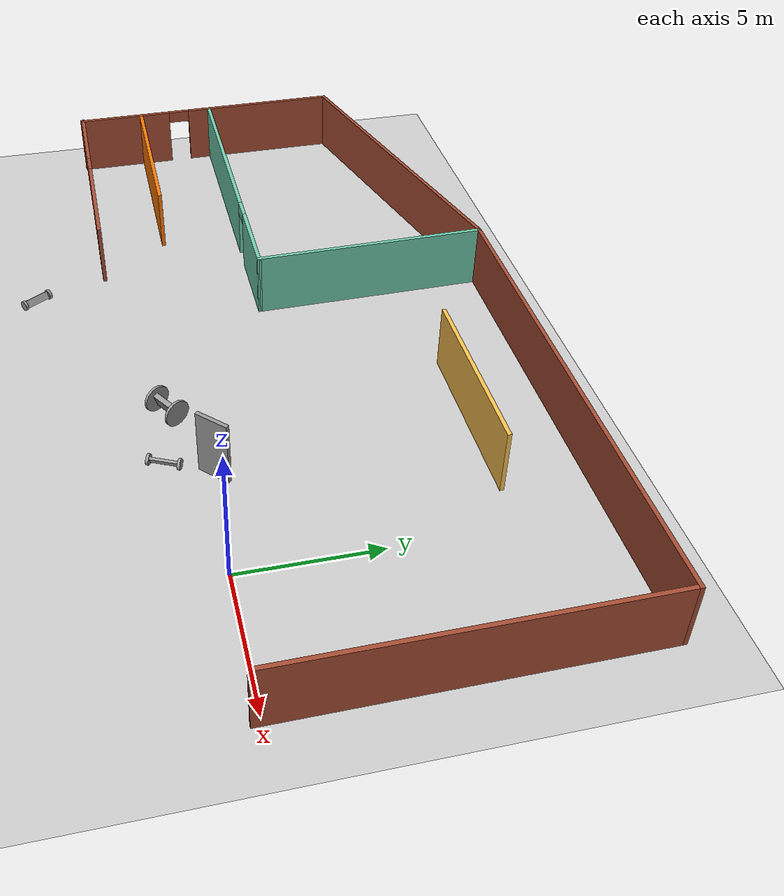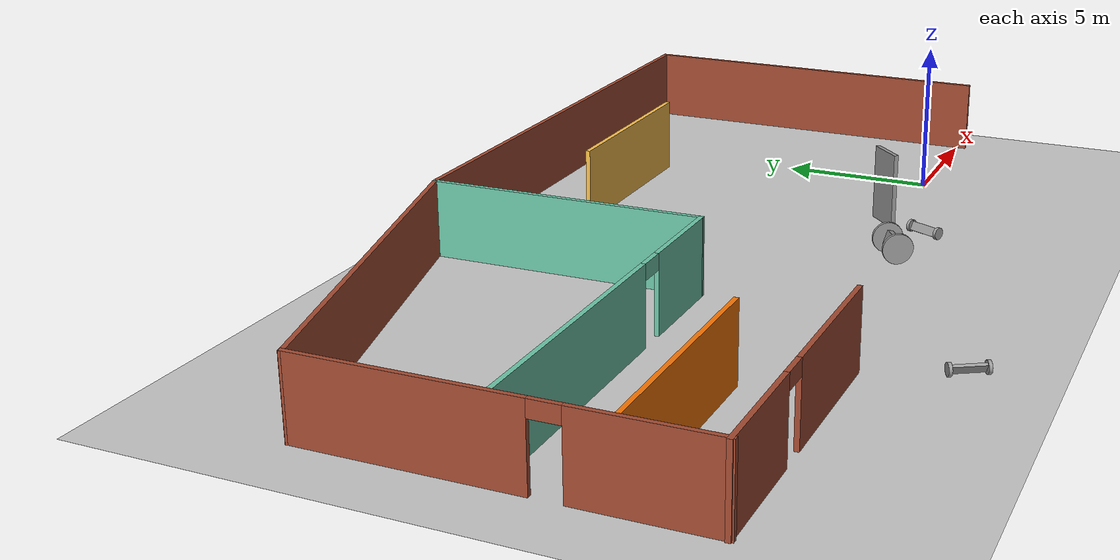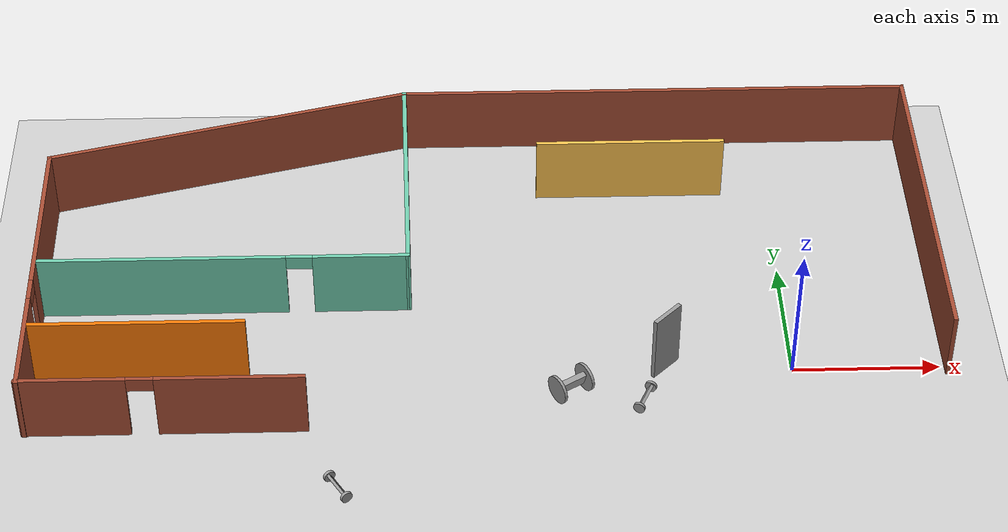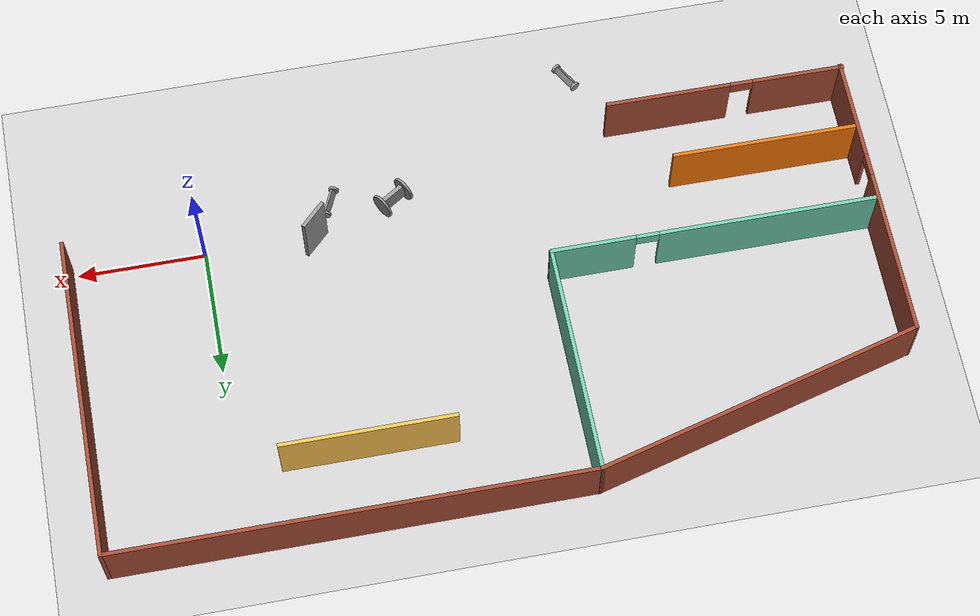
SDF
<sdf version="1.6">
 <world name="default">
  <model name="ground_plane">
   <static>1</static>
   <link name="link">
    <collision name="collision">
     <geometry><plane><normal>0 0 1</normal><size>100 100</size></plane></geometry>
     <surface>
      <contact><collide_bitmask>65535</collide_bitmask></contact>
      <friction><ode><mu>100</mu><mu2>50</mu2></ode></friction>
     </surface>
    </collision>
    <visual name="visual">
     <cast_shadows>0</cast_shadows>
     <geometry><plane><normal>0 0 1</normal><size>100 100</size></plane></geometry>
     <material>
      <script><uri>file://media/materials/scripts/gazebo.material</uri><name>Gazebo/Grey</name></script>
     </material>
    </visual>
   </link>
  </model>
  <model name="twowheelsrobotModel">
   <link name="link_0">
    <pose>0 0 0.2 0 -0 0</pose>
    <inertial>
     <mass>1</mass>
     <inertia>
      <ixx>0.166667</ixx>
      <ixy>0</ixy>
      <ixz>0</ixz>
      <iyy>0.166667</iyy>
      <iyz>0</iyz>
      <izz>0.166667</izz>
     </inertia>
    </inertial>
    <visual name="visual">
     <geometry><box><size>0.3 1 0.1</size></box></geometry>
     <material>
      <lighting>1</lighting>
      <script><uri>file://media/materials/scripts/gazebo.material</uri><name>Gazebo/Grey</name></script>
      <shader type="pixel"><normal_map>__default__</normal_map></shader>
      <ambient>0.3 0.3 0.3 1</ambient>
      <diffuse>0.7 0.7 0.7 1</diffuse>
      <specular>0.01 0.01 0.01 1</specular>
      <emissive>0 0 0 1</emissive>
     </material>
    </visual>
    <collision name="collision">
     <geometry><box><size>0.3 1 0.1</size></box></geometry>
     <surface>
      <friction>
       <ode><mu>1</mu><mu2>1</mu2><fdir1>0 0 0</fdir1><slip1>0</slip1><slip2>0</slip2></ode>
       <torsional>
        <coefficient>1</coefficient>
        <patch_radius>0</patch_radius>
        <surface_radius>0</surface_radius>
        <use_patch_radius>1</use_patch_radius>
        <ode><slip>0</slip></ode>
       </torsional>
      </friction>
      <bounce><restitution_coefficient>0</restitution_coefficient><threshold>1e+06</threshold></bounce>
      <contact>
       <collide_without_contact>0</collide_without_contact>
       <collide_without_contact_bitmask>1</collide_without_contact_bitmask>
       <collide_bitmask>1</collide_bitmask>
       <ode>
        <soft_cfm>0</soft_cfm>
        <soft_erp>0.2</soft_erp>
        <kp>1e+13</kp>
        <kd>1</kd>
        <max_vel>0.01</max_vel>
        <min_depth>0</min_depth>
       </ode>
       <bullet>
        <split_impulse>1</split_impulse>
        <split_impulse_penetration_threshold>-0.01</split_impulse_penetration_threshold>
        <soft_cfm>0</soft_cfm>
        <soft_erp>0.2</soft_erp>
        <kp>1e+13</kp>
        <kd>1</kd>
       </bullet>
      </contact>
     </surface>
    </collision>
   </link>
   <link name="link_1">
    <pose>0 -0.550019 0.2 1.5707 -0 0</pose>
    <inertial>
     <mass>1</mass>
     <inertia><ixx>0.145833</ixx><ixy>0</ixy><ixz>0</ixz><iyy>0.145833</iyy><iyz>0</iyz><izz>0.125</izz></inertia>
    </inertial>
    <visual name="visual">
     <geometry><cylinder><radius>0.2</radius><length>0.1</length></cylinder></geometry>
     <material>
      <lighting>1</lighting>
      <script><uri>file://media/materials/scripts/gazebo.material</uri><name>Gazebo/Grey</name></script>
      <shader type="pixel"><normal_map>__default__</normal_map></shader>
      <ambient>0.3 0.3 0.3 1</ambient>
      <diffuse>0.7 0.7 0.7 1</diffuse>
      <specular>0.01 0.01 0.01 1</specular>
      <emissive>0 0 0 1</emissive>
     </material>
    </visual>
    <collision name="collision">
     <geometry><cylinder><radius>0.2</radius><length>0.1</length></cylinder></geometry>
     <surface>
      <friction>
       <ode><mu>1</mu><mu2>1</mu2><fdir1>0 0 0</fdir1><slip1>0</slip1><slip2>0</slip2></ode>
       <torsional>
        <coefficient>1</coefficient>
        <patch_radius>0</patch_radius>
        <surface_radius>0</surface_radius>
        <use_patch_radius>1</use_patch_radius>
        <ode><slip>0</slip></ode>
       </torsional>
      </friction>
      <bounce><restitution_coefficient>0</restitution_coefficient><threshold>1e+06</threshold></bounce>
      <contact>
       <collide_without_contact>0</collide_without_contact>
       <collide_without_contact_bitmask>1</collide_without_contact_bitmask>
       <collide_bitmask>1</collide_bitmask>
       <ode>
        <soft_cfm>0</soft_cfm>
        <soft_erp>0.2</soft_erp>
        <kp>1e+13</kp>
        <kd>1</kd>
        <max_vel>0.01</max_vel>
        <min_depth>0</min_depth>
       </ode>
       <bullet>
        <split_impulse>1</split_impulse>
        <split_impulse_penetration_threshold>-0.01</split_impulse_penetration_threshold>
        <soft_cfm>0</soft_cfm>
        <soft_erp>0.2</soft_erp>
        <kp>1e+13</kp>
        <kd>1</kd>
       </bullet>
      </contact>
     </surface>
    </collision>
   </link>
   <link name="link_1_clone">
    <pose>0 0.550019 0.2 1.5707 -0 0</pose>
    <inertial>
     <mass>1</mass>
     <inertia><ixx>0.145833</ixx><ixy>0</ixy><ixz>0</ixz><iyy>0.145833</iyy><iyz>0</iyz><izz>0.125</izz></inertia>
    </inertial>
    <visual name="visual">
     <geometry><cylinder><radius>0.2</radius><length>0.1</length></cylinder></geometry>
     <material>
      <lighting>1</lighting>
      <script><uri>file://media/materials/scripts/gazebo.material</uri><name>Gazebo/Grey</name></script>
      <shader type="pixel"><normal_map>__default__</normal_map></shader>
      <ambient>0.3 0.3 0.3 1</ambient>
      <diffuse>0.7 0.7 0.7 1</diffuse>
      <specular>0.01 0.01 0.01 1</specular>
      <emissive>0 0 0 1</emissive>
     </material>
    </visual>
    <collision name="collision">
     <geometry><cylinder><radius>0.2</radius><length>0.1</length></cylinder></geometry>
     <surface>
      <friction>
       <ode><mu>1</mu><mu2>1</mu2><fdir1>0 0 0</fdir1><slip1>0</slip1><slip2>0</slip2></ode>
       <torsional>
        <coefficient>1</coefficient>
        <patch_radius>0</patch_radius>
        <surface_radius>0</surface_radius>
        <use_patch_radius>1</use_patch_radius>
        <ode><slip>0</slip></ode>
       </torsional>
      </friction>
      <bounce><restitution_coefficient>0</restitution_coefficient><threshold>1e+06</threshold></bounce>
      <contact>
       <collide_without_contact>0</collide_without_contact>
       <collide_without_contact_bitmask>1</collide_without_contact_bitmask>
       <collide_bitmask>1</collide_bitmask>
       <ode>
        <soft_cfm>0</soft_cfm>
        <soft_erp>0.2</soft_erp>
        <kp>1e+13</kp>
        <kd>1</kd>
        <max_vel>0.01</max_vel>
        <min_depth>0</min_depth>
       </ode>
       <bullet>
        <split_impulse>1</split_impulse>
        <split_impulse_penetration_threshold>-0.01</split_impulse_penetration_threshold>
        <soft_cfm>0</soft_cfm>
        <soft_erp>0.2</soft_erp>
        <kp>1e+13</kp>
        <kd>1</kd>
       </bullet>
      </contact>
     </surface>
    </collision>
   </link>
   <joint name="link_0_JOINT_0" type="revolute">
    <parent>link_0</parent>
    <child>link_1</child>
    <axis>
     <xyz>0 0 1</xyz>
     <limit>
      <lower>-1.79769e+308</lower>
      <upper>1.79769e+308</upper>
      <effort>-1</effort>
      <velocity>-1</velocity>
     </limit>
     <dynamics>
      <spring_reference>0</spring_reference>
      <spring_stiffness>0</spring_stiffness>
      <damping>0</damping>
     </dynamics>
     <use_parent_model_frame>0</use_parent_model_frame>
    </axis>
    <physics>
     <ode><limit><cfm>0</cfm><erp>0.2</erp></limit><suspension><cfm>0</cfm><erp>0.2</erp></suspension></ode>
    </physics>
   </joint>
   <joint name="link_0_JOINT_1" type="revolute">
    <parent>link_0</parent>
    <child>link_1_clone</child>
    <axis>
     <xyz>0 0 1</xyz>
     <limit>
      <lower>-1.79769e+308</lower>
      <upper>1.79769e+308</upper>
      <effort>-1</effort>
      <velocity>-1</velocity>
     </limit>
     <dynamics>
      <spring_reference>0</spring_reference>
      <spring_stiffness>0</spring_stiffness>
      <damping>0</damping>
     </dynamics>
     <use_parent_model_frame>0</use_parent_model_frame>
    </axis>
    <physics>
     <ode><limit><cfm>0</cfm><erp>0.2</erp></limit><suspension><cfm>0</cfm><erp>0.2</erp></suspension></ode>
    </physics>
   </joint>
   <static>0</static>
   <pose>-15.4437 -5.30653 0.097717 1e-06 1.03395 0.546185</pose>
  </model>
  <model name="twowheelsrobotModel_clone">
   <link name="link_0">
    <pose>0 0 0.2 0 -0 0</pose>
    <inertial>
     <mass>1</mass>
     <inertia>
      <ixx>0.166667</ixx>
      <ixy>0</ixy>
      <ixz>0</ixz>
      <iyy>0.166667</iyy>
      <iyz>0</iyz>
      <izz>0.166667</izz>
     </inertia>
    </inertial>
    <visual name="visual">
     <geometry><box><size>0.3 1 0.1</size></box></geometry>
     <material>
      <lighting>1</lighting>
      <script><uri>file://media/materials/scripts/gazebo.material</uri><name>Gazebo/Grey</name></script>
      <shader type="pixel"><normal_map>__default__</normal_map></shader>
      <ambient>0.3 0.3 0.3 1</ambient>
      <diffuse>0.7 0.7 0.7 1</diffuse>
      <specular>0.01 0.01 0.01 1</specular>
      <emissive>0 0 0 1</emissive>
     </material>
    </visual>
    <collision name="collision">
     <geometry><box><size>0.3 1 0.1</size></box></geometry>
     <surface>
      <friction>
       <ode><mu>1</mu><mu2>1</mu2><fdir1>0 0 0</fdir1><slip1>0</slip1><slip2>0</slip2></ode>
       <torsional>
        <coefficient>1</coefficient>
        <patch_radius>0</patch_radius>
        <surface_radius>0</surface_radius>
        <use_patch_radius>1</use_patch_radius>
        <ode><slip>0</slip></ode>
       </torsional>
      </friction>
      <bounce><restitution_coefficient>0</restitution_coefficient><threshold>1e+06</threshold></bounce>
      <contact>
       <collide_without_contact>0</collide_without_contact>
       <collide_without_contact_bitmask>1</collide_without_contact_bitmask>
       <collide_bitmask>1</collide_bitmask>
       <ode>
        <soft_cfm>0</soft_cfm>
        <soft_erp>0.2</soft_erp>
        <kp>1e+13</kp>
        <kd>1</kd>
        <max_vel>0.01</max_vel>
        <min_depth>0</min_depth>
       </ode>
       <bullet>
        <split_impulse>1</split_impulse>
        <split_impulse_penetration_threshold>-0.01</split_impulse_penetration_threshold>
        <soft_cfm>0</soft_cfm>
        <soft_erp>0.2</soft_erp>
        <kp>1e+13</kp>
        <kd>1</kd>
       </bullet>
      </contact>
     </surface>
    </collision>
   </link>
   <link name="link_1">
    <pose>0 -0.550019 0.2 1.5707 -0 0</pose>
    <inertial>
     <mass>1</mass>
     <inertia><ixx>0.145833</ixx><ixy>0</ixy><ixz>0</ixz><iyy>0.145833</iyy><iyz>0</iyz><izz>0.125</izz></inertia>
    </inertial>
    <visual name="visual">
     <geometry><cylinder><radius>0.2</radius><length>0.1</length></cylinder></geometry>
     <material>
      <lighting>1</lighting>
      <script><uri>file://media/materials/scripts/gazebo.material</uri><name>Gazebo/Grey</name></script>
      <shader type="pixel"><normal_map>__default__</normal_map></shader>
      <ambient>0.3 0.3 0.3 1</ambient>
      <diffuse>0.7 0.7 0.7 1</diffuse>
      <specular>0.01 0.01 0.01 1</specular>
      <emissive>0 0 0 1</emissive>
     </material>
    </visual>
    <collision name="collision">
     <geometry><cylinder><radius>0.2</radius><length>0.1</length></cylinder></geometry>
     <surface>
      <friction>
       <ode><mu>1</mu><mu2>1</mu2><fdir1>0 0 0</fdir1><slip1>0</slip1><slip2>0</slip2></ode>
       <torsional>
        <coefficient>1</coefficient>
        <patch_radius>0</patch_radius>
        <surface_radius>0</surface_radius>
        <use_patch_radius>1</use_patch_radius>
        <ode><slip>0</slip></ode>
       </torsional>
      </friction>
      <bounce><restitution_coefficient>0</restitution_coefficient><threshold>1e+06</threshold></bounce>
      <contact>
       <collide_without_contact>0</collide_without_contact>
       <collide_without_contact_bitmask>1</collide_without_contact_bitmask>
       <collide_bitmask>1</collide_bitmask>
       <ode>
        <soft_cfm>0</soft_cfm>
        <soft_erp>0.2</soft_erp>
        <kp>1e+13</kp>
        <kd>1</kd>
        <max_vel>0.01</max_vel>
        <min_depth>0</min_depth>
       </ode>
       <bullet>
        <split_impulse>1</split_impulse>
        <split_impulse_penetration_threshold>-0.01</split_impulse_penetration_threshold>
        <soft_cfm>0</soft_cfm>
        <soft_erp>0.2</soft_erp>
        <kp>1e+13</kp>
        <kd>1</kd>
       </bullet>
      </contact>
     </surface>
    </collision>
   </link>
   <link name="link_1_clone">
    <pose>0 0.550019 0.2 1.5707 -0 0</pose>
    <inertial>
     <mass>1</mass>
     <inertia><ixx>0.145833</ixx><ixy>0</ixy><ixz>0</ixz><iyy>0.145833</iyy><iyz>0</iyz><izz>0.125</izz></inertia>
    </inertial>
    <visual name="visual">
     <geometry><cylinder><radius>0.2</radius><length>0.1</length></cylinder></geometry>
     <material>
      <lighting>1</lighting>
      <script><uri>file://media/materials/scripts/gazebo.material</uri><name>Gazebo/Grey</name></script>
      <shader type="pixel"><normal_map>__default__</normal_map></shader>
      <ambient>0.3 0.3 0.3 1</ambient>
      <diffuse>0.7 0.7 0.7 1</diffuse>
      <specular>0.01 0.01 0.01 1</specular>
      <emissive>0 0 0 1</emissive>
     </material>
    </visual>
    <collision name="collision">
     <geometry><cylinder><radius>0.2</radius><length>0.1</length></cylinder></geometry>
     <surface>
      <friction>
       <ode><mu>1</mu><mu2>1</mu2><fdir1>0 0 0</fdir1><slip1>0</slip1><slip2>0</slip2></ode>
       <torsional>
        <coefficient>1</coefficient>
        <patch_radius>0</patch_radius>
        <surface_radius>0</surface_radius>
        <use_patch_radius>1</use_patch_radius>
        <ode><slip>0</slip></ode>
       </torsional>
      </friction>
      <bounce><restitution_coefficient>0</restitution_coefficient><threshold>1e+06</threshold></bounce>
      <contact>
       <collide_without_contact>0</collide_without_contact>
       <collide_without_contact_bitmask>1</collide_without_contact_bitmask>
       <collide_bitmask>1</collide_bitmask>
       <ode>
        <soft_cfm>0</soft_cfm>
        <soft_erp>0.2</soft_erp>
        <kp>1e+13</kp>
        <kd>1</kd>
        <max_vel>0.01</max_vel>
        <min_depth>0</min_depth>
       </ode>
       <bullet>
        <split_impulse>1</split_impulse>
        <split_impulse_penetration_threshold>-0.01</split_impulse_penetration_threshold>
        <soft_cfm>0</soft_cfm>
        <soft_erp>0.2</soft_erp>
        <kp>1e+13</kp>
        <kd>1</kd>
       </bullet>
      </contact>
     </surface>
    </collision>
   </link>
   <joint name="link_0_JOINT_0" type="revolute">
    <parent>link_0</parent>
    <child>link_1</child>
    <axis>
     <xyz>0 0 1</xyz>
     <limit>
      <lower>-1.79769e+308</lower>
      <upper>1.79769e+308</upper>
      <effort>-1</effort>
      <velocity>-1</velocity>
     </limit>
     <dynamics>
      <spring_reference>0</spring_reference>
      <spring_stiffness>0</spring_stiffness>
      <damping>0</damping>
     </dynamics>
     <use_parent_model_frame>0</use_parent_model_frame>
    </axis>
    <physics>
     <ode><limit><cfm>0</cfm><erp>0.2</erp></limit><suspension><cfm>0</cfm><erp>0.2</erp></suspension></ode>
    </physics>
   </joint>
   <joint name="link_0_JOINT_1" type="revolute">
    <parent>link_0</parent>
    <child>link_1_clone</child>
    <axis>
     <xyz>0 0 1</xyz>
     <limit>
      <lower>-1.79769e+308</lower>
      <upper>1.79769e+308</upper>
      <effort>-1</effort>
      <velocity>-1</velocity>
     </limit>
     <dynamics>
      <spring_reference>0</spring_reference>
      <spring_stiffness>0</spring_stiffness>
      <damping>0</damping>
     </dynamics>
     <use_parent_model_frame>0</use_parent_model_frame>
    </axis>
    <physics>
     <ode><limit><cfm>0</cfm><erp>0.2</erp></limit><suspension><cfm>0</cfm><erp>0.2</erp></suspension></ode>
    </physics>
   </joint>
   <static>0</static>
   <pose>-5.26683 -1.2959 0.290898 3.14159 1.09901 2.71486</pose>
  </model>
  <model name="BigRobot">
   <link name="link">
    <inertial>
     <mass>1</mass>
     <inertia>
      <ixx>0.166667</ixx>
      <ixy>0</ixy>
      <ixz>0</ixz>
      <iyy>0.166667</iyy>
      <iyz>0</iyz>
      <izz>0.166667</izz>
     </inertia>
    </inertial>
    <pose>0 0 0.5 0 -0 0</pose>
    <visual name="visual">
     <geometry><box><size>0.5 1 0.2</size></box></geometry>
     <material>
      <script><name>Gazebo/Grey</name><uri>file://media/materials/scripts/gazebo.material</uri></script>
      <shader type="pixel"><normal_map>__default__</normal_map></shader>
      <ambient>0.3 0.3 0.3 1</ambient>
      <diffuse>0.7 0.7 0.7 1</diffuse>
      <specular>0.01 0.01 0.01 1</specular>
      <emissive>0 0 0 1</emissive>
     </material>
    </visual>
    <collision name="collision">
     <geometry><box><size>0.5 1 0.2</size></box></geometry>
     <surface>
      <friction>
       <ode><mu>1</mu><mu2>1</mu2><fdir1>0 0 0</fdir1><slip1>0</slip1><slip2>0</slip2></ode>
       <torsional>
        <coefficient>1</coefficient>
        <patch_radius>0</patch_radius>
        <surface_radius>0</surface_radius>
        <use_patch_radius>1</use_patch_radius>
        <ode><slip>0</slip></ode>
       </torsional>
      </friction>
      <bounce><restitution_coefficient>0</restitution_coefficient><threshold>1e+06</threshold></bounce>
      <contact>
       <collide_without_contact>0</collide_without_contact>
       <collide_without_contact_bitmask>1</collide_without_contact_bitmask>
       <collide_bitmask>1</collide_bitmask>
       <ode>
        <soft_cfm>0</soft_cfm>
        <soft_erp>0.2</soft_erp>
        <kp>1e+13</kp>
        <kd>1</kd>
        <max_vel>0.01</max_vel>
        <min_depth>0</min_depth>
       </ode>
       <bullet>
        <split_impulse>1</split_impulse>
        <split_impulse_penetration_threshold>-0.01</split_impulse_penetration_threshold>
        <soft_cfm>0</soft_cfm>
        <soft_erp>0.2</soft_erp>
        <kp>1e+13</kp>
        <kd>1</kd>
       </bullet>
      </contact>
     </surface>
    </collision>
   </link>
   <link name="link_0">
    <inertial>
     <mass>1</mass>
     <inertia><ixx>0.145833</ixx><ixy>0</ixy><ixz>0</ixz><iyy>0.145833</iyy><iyz>0</iyz><izz>0.125</izz></inertia>
    </inertial>
    <pose>0 -0.550048 0.5 1.5707 -0 0</pose>
    <visual name="visual">
     <geometry><cylinder><radius>0.5</radius><length>0.1</length></cylinder></geometry>
     <material>
      <lighting>1</lighting>
      <script><uri>file://media/materials/scripts/gazebo.material</uri><name>Gazebo/Grey</name></script>
      <shader type="pixel"><normal_map>__default__</normal_map></shader>
      <ambient>0.3 0.3 0.3 1</ambient>
      <diffuse>0.7 0.7 0.7 1</diffuse>
      <specular>0.01 0.01 0.01 1</specular>
      <emissive>0 0 0 1</emissive>
     </material>
    </visual>
    <collision name="collision">
     <geometry><cylinder><radius>0.5</radius><length>0.1</length></cylinder></geometry>
     <surface>
      <friction>
       <ode><mu>1</mu><mu2>1</mu2><fdir1>0 0 0</fdir1><slip1>0</slip1><slip2>0</slip2></ode>
       <torsional>
        <coefficient>1</coefficient>
        <patch_radius>0</patch_radius>
        <surface_radius>0</surface_radius>
        <use_patch_radius>1</use_patch_radius>
        <ode><slip>0</slip></ode>
       </torsional>
      </friction>
      <bounce><restitution_coefficient>0</restitution_coefficient><threshold>1e+06</threshold></bounce>
      <contact>
       <collide_without_contact>0</collide_without_contact>
       <collide_without_contact_bitmask>1</collide_without_contact_bitmask>
       <collide_bitmask>1</collide_bitmask>
       <ode>
        <soft_cfm>0</soft_cfm>
        <soft_erp>0.2</soft_erp>
        <kp>1e+13</kp>
        <kd>1</kd>
        <max_vel>0.01</max_vel>
        <min_depth>0</min_depth>
       </ode>
       <bullet>
        <split_impulse>1</split_impulse>
        <split_impulse_penetration_threshold>-0.01</split_impulse_penetration_threshold>
        <soft_cfm>0</soft_cfm>
        <soft_erp>0.2</soft_erp>
        <kp>1e+13</kp>
        <kd>1</kd>
       </bullet>
      </contact>
     </surface>
    </collision>
   </link>
   <link name="link_0_clone">
    <inertial>
     <mass>1</mass>
     <inertia><ixx>0.145833</ixx><ixy>0</ixy><ixz>0</ixz><iyy>0.145833</iyy><iyz>0</iyz><izz>0.125</izz></inertia>
    </inertial>
    <pose>0 0.550048 0.5 1.5707 -0 0</pose>
    <visual name="visual">
     <geometry><cylinder><radius>0.5</radius><length>0.1</length></cylinder></geometry>
     <material>
      <lighting>1</lighting>
      <script><uri>file://media/materials/scripts/gazebo.material</uri><name>Gazebo/Grey</name></script>
      <shader type="pixel"><normal_map>__default__</normal_map></shader>
      <ambient>0.3 0.3 0.3 1</ambient>
      <diffuse>0.7 0.7 0.7 1</diffuse>
      <specular>0.01 0.01 0.01 1</specular>
      <emissive>0 0 0 1</emissive>
     </material>
    </visual>
    <collision name="collision">
     <geometry><cylinder><radius>0.5</radius><length>0.1</length></cylinder></geometry>
     <surface>
      <friction>
       <ode><mu>1</mu><mu2>1</mu2><fdir1>0 0 0</fdir1><slip1>0</slip1><slip2>0</slip2></ode>
       <torsional>
        <coefficient>1</coefficient>
        <patch_radius>0</patch_radius>
        <surface_radius>0</surface_radius>
        <use_patch_radius>1</use_patch_radius>
        <ode><slip>0</slip></ode>
       </torsional>
      </friction>
      <bounce><restitution_coefficient>0</restitution_coefficient><threshold>1e+06</threshold></bounce>
      <contact>
       <collide_without_contact>0</collide_without_contact>
       <collide_without_contact_bitmask>1</collide_without_contact_bitmask>
       <collide_bitmask>1</collide_bitmask>
       <ode>
        <soft_cfm>0</soft_cfm>
        <soft_erp>0.2</soft_erp>
        <kp>1e+13</kp>
        <kd>1</kd>
        <max_vel>0.01</max_vel>
        <min_depth>0</min_depth>
       </ode>
       <bullet>
        <split_impulse>1</split_impulse>
        <split_impulse_penetration_threshold>-0.01</split_impulse_penetration_threshold>
        <soft_cfm>0</soft_cfm>
        <soft_erp>0.2</soft_erp>
        <kp>1e+13</kp>
        <kd>1</kd>
       </bullet>
      </contact>
     </surface>
    </collision>
   </link>
   <joint name="link_JOINT_0" type="revolute">
    <parent>link</parent>
    <child>link_0</child>
    <axis>
     <xyz>0 0 1</xyz>
     <limit>
      <lower>-1.79769e+308</lower>
      <upper>1.79769e+308</upper>
      <effort>-1</effort>
      <velocity>-1</velocity>
     </limit>
     <dynamics>
      <spring_reference>0</spring_reference>
      <spring_stiffness>0</spring_stiffness>
      <damping>0</damping>
     </dynamics>
     <use_parent_model_frame>0</use_parent_model_frame>
    </axis>
    <physics>
     <ode><limit><cfm>0</cfm><erp>0.2</erp></limit><suspension><cfm>0</cfm><erp>0.2</erp></suspension></ode>
    </physics>
   </joint>
   <joint name="link_JOINT_1" type="revolute">
    <parent>link</parent>
    <child>link_0_clone</child>
    <axis>
     <xyz>0 0 1</xyz>
     <limit>
      <lower>-1.79769e+308</lower>
      <upper>1.79769e+308</upper>
      <effort>-1</effort>
      <velocity>-1</velocity>
     </limit>
     <dynamics>
      <spring_reference>0</spring_reference>
      <spring_stiffness>0</spring_stiffness>
      <damping>0</damping>
     </dynamics>
     <use_parent_model_frame>0</use_parent_model_frame>
    </axis>
    <physics>
     <ode><limit><cfm>0</cfm><erp>0.2</erp></limit><suspension><cfm>0</cfm><erp>0.2</erp></suspension></ode>
    </physics>
   </joint>
   <static>0</static>
   <pose>-7.30792 -1.35923 0.347835 1e-06 -1.26156 -1.00215</pose>
  </model>
  <model name="WhereamI.world">
   <pose>-10.2836 4.94039 0 0 -0 0</pose>
   <link name="Wall_12">
    <pose>-8.99939 -1.53639 0 0 -0 0</pose>
    <visual name="Wall_12_Visual_0">
     <pose>-2.125 0 1.25 0 -0 0</pose>
     <geometry><box><size>8.5 0.15 2.5</size></box></geometry>
     <material>
      <script><uri>file://media/materials/scripts/gazebo.material</uri><name>Gazebo/Grey</name></script>
      <ambient>0.435294 0.796078 0.67451 1</ambient>
     </material>
     <meta><layer>0</layer></meta>
    </visual>
    <collision name="Wall_12_Collision_0">
     <geometry><box><size>8.5 0.15 2.5</size></box></geometry>
     <pose>-2.125 0 1.25 0 -0 0</pose>
    </collision>
    <visual name="Wall_12_Visual_1">
     <pose>4.7 0 1.25 0 -0 0</pose>
     <geometry><box><size>3.35 0.15 2.5</size></box></geometry>
     <material>
      <script><uri>file://media/materials/scripts/gazebo.material</uri><name>Gazebo/Grey</name></script>
      <ambient>0.435294 0.796078 0.67451 1</ambient>
     </material>
     <meta><layer>0</layer></meta>
    </visual>
    <collision name="Wall_12_Collision_1">
     <geometry><box><size>3.35 0.15 2.5</size></box></geometry>
     <pose>4.7 0 1.25 0 -0 0</pose>
    </collision>
    <visual name="Wall_12_Visual_2">
     <pose>2.575 0 2.25 0 -0 0</pose>
     <geometry><box><size>0.9 0.15 0.5</size></box></geometry>
     <material>
      <script><uri>file://media/materials/scripts/gazebo.material</uri><name>Gazebo/Grey</name></script>
      <ambient>0.435294 0.796078 0.67451 1</ambient>
     </material>
     <meta><layer>0</layer></meta>
    </visual>
    <collision name="Wall_12_Collision_2">
     <geometry><box><size>0.9 0.15 0.5</size></box></geometry>
     <pose>2.575 0 2.25 0 -0 0</pose>
    </collision>
   </link>
   <link name="Wall_13">
    <collision name="Wall_13_Collision">
     <geometry><box><size>9.09563 0.15 2.5</size></box></geometry>
     <pose>0 0 1.25 0 -0 0</pose>
    </collision>
    <visual name="Wall_13_Visual">
     <pose>0 0 1.25 0 -0 0</pose>
     <geometry><box><size>9.09563 0.15 2.5</size></box></geometry>
     <material>
      <script><uri>file://media/materials/scripts/gazebo.material</uri><name>Gazebo/Grey</name></script>
      <ambient>0.435294 0.796078 0.67451 1</ambient>
     </material>
     <meta><layer>0</layer></meta>
    </visual>
    <pose>-2.76957 2.93587 0 0 -0 1.58649</pose>
   </link>
   <link name="Wall_15">
    <collision name="Wall_15_Collision">
     <geometry><box><size>7.25 0.15 2.5</size></box></geometry>
     <pose>0 0 1.25 0 -0 0</pose>
    </collision>
    <visual name="Wall_15_Visual">
     <pose>0 0 1.25 0 -0 0</pose>
     <geometry><box><size>7.25 0.15 2.5</size></box></geometry>
     <material>
      <script><uri>file://media/materials/scripts/gazebo.material</uri><name>Gazebo/Grey</name></script>
      <ambient>0.996078 0.47451 0.0196078 1</ambient>
     </material>
     <meta><layer>0</layer></meta>
    </visual>
    <pose>-11.7294 -4.71039 0 0 -0 0</pose>
   </link>
   <link name="Wall_19">
    <collision name="Wall_19_Collision">
     <geometry><box><size>6.75 0.15 2.5</size></box></geometry>
     <pose>0 0 1.25 0 -0 0</pose>
    </collision>
    <visual name="Wall_19_Visual">
     <pose>0 0 1.25 0 -0 0</pose>
     <geometry><box><size>6.75 0.15 2.5</size></box></geometry>
     <material>
      <script><uri>file://media/materials/scripts/gazebo.material</uri><name>Gazebo/Grey</name></script>
      <ambient>1 0.764706 0.305882 1</ambient>
     </material>
     <meta><layer>0</layer></meta>
    </visual>
    <pose>5.29461 4.39761 0 0 -0 3.14159</pose>
   </link>
   <link name="Wall_21">
    <collision name="Wall_21_Collision">
     <geometry><box><size>1.25 0.15 2.5</size></box></geometry>
     <pose>0 0 1.25 0 -0 0</pose>
    </collision>
    <visual name="Wall_21_Visual">
     <pose>0 0 1.25 0 -0 0</pose>
     <geometry><box><size>1.25 0.15 2.5</size></box></geometry>
     <material>
      <script><uri>file://media/materials/scripts/gazebo.material</uri><name>Gazebo/Grey</name></script>
      <ambient>1 1 1 1</ambient>
     </material>
     <meta><layer>0</layer></meta>
    </visual>
    <pose>5.9517 -4.7083 0 0 0 -2.35619</pose>
   </link>
   <link name="Wall_4">
    <pose>-10.7724 -7.37839 0 0 -0 3.14159</pose>
    <visual name="Wall_4_Visual_0">
     <pose>-2.2785 0 1.25 0 -0 0</pose>
     <geometry><box><size>4.943 0.15 2.5</size></box></geometry>
     <material>
      <script><uri>file://media/materials/scripts/gazebo.material</uri><name>Gazebo/Bricks</name></script>
      <ambient>1 1 1 1</ambient>
     </material>
     <meta><layer>0</layer></meta>
    </visual>
    <collision name="Wall_4_Collision_0">
     <geometry><box><size>4.943 0.15 2.5</size></box></geometry>
     <pose>-2.2785 0 1.25 0 -0 0</pose>
    </collision>
    <visual name="Wall_4_Visual_1">
     <pose>2.9215 0 1.25 0 -0 0</pose>
     <geometry><box><size>3.657 0.15 2.5</size></box></geometry>
     <material>
      <script><uri>file://media/materials/scripts/gazebo.material</uri><name>Gazebo/Bricks</name></script>
      <ambient>1 1 1 1</ambient>
     </material>
     <meta><layer>0</layer></meta>
    </visual>
    <collision name="Wall_4_Collision_1">
     <geometry><box><size>3.657 0.15 2.5</size></box></geometry>
     <pose>2.9215 0 1.25 0 -0 0</pose>
    </collision>
    <visual name="Wall_4_Visual_2">
     <pose>0.643 0 2.25 0 -0 0</pose>
     <geometry><box><size>0.9 0.15 0.5</size></box></geometry>
     <material>
      <script><uri>file://media/materials/scripts/gazebo.material</uri><name>Gazebo/Bricks</name></script>
      <ambient>1 1 1 1</ambient>
     </material>
     <meta><layer>0</layer></meta>
    </visual>
    <collision name="Wall_4_Collision_2">
     <geometry><box><size>0.9 0.15 0.5</size></box></geometry>
     <pose>0.643 0 2.25 0 -0 0</pose>
    </collision>
   </link>
   <link name="Wall_5">
    <pose>-15.4474 -1.70339 0 0 -0 1.57884</pose>
    <visual name="Wall_5_Visual_0">
     <pose>-3.75306 0 1.25 0 -0 0</pose>
     <geometry><box><size>4.08624 0.15 2.5</size></box></geometry>
     <material>
      <script><uri>file://media/materials/scripts/gazebo.material</uri><name>Gazebo/Bricks</name></script>
      <ambient>1 1 1 1</ambient>
     </material>
     <meta><layer>0</layer></meta>
    </visual>
    <collision name="Wall_5_Collision_0">
     <geometry><box><size>4.08624 0.15 2.5</size></box></geometry>
     <pose>-3.75306 0 1.25 0 -0 0</pose>
    </collision>
    <visual name="Wall_5_Visual_1">
     <pose>2.49312 0 1.25 0 -0 0</pose>
     <geometry><box><size>6.60612 0.15 2.5</size></box></geometry>
     <material>
      <script><uri>file://media/materials/scripts/gazebo.material</uri><name>Gazebo/Bricks</name></script>
      <ambient>1 1 1 1</ambient>
     </material>
     <meta><layer>0</layer></meta>
    </visual>
    <collision name="Wall_5_Collision_1">
     <geometry><box><size>6.60612 0.15 2.5</size></box></geometry>
     <pose>2.49312 0 1.25 0 -0 0</pose>
    </collision>
    <visual name="Wall_5_Visual_2">
     <pose>-1.25994 0 2.25 0 -0 0</pose>
     <geometry><box><size>0.9 0.15 0.5</size></box></geometry>
     <material>
      <script><uri>file://media/materials/scripts/gazebo.material</uri><name>Gazebo/Bricks</name></script>
      <ambient>1 1 1 1</ambient>
     </material>
     <meta><layer>0</layer></meta>
    </visual>
    <collision name="Wall_5_Collision_2">
     <geometry><box><size>0.9 0.15 0.5</size></box></geometry>
     <pose>-1.25994 0 2.25 0 -0 0</pose>
    </collision>
   </link>
   <link name="Wall_6">
    <collision name="Wall_6_Collision">
     <geometry><box><size>13.25 0.15 2.5</size></box></geometry>
     <pose>0 0 1.25 0 -0 0</pose>
    </collision>
    <visual name="Wall_6_Visual">
     <pose>0 0 1.25 0 -0 0</pose>
     <geometry><box><size>13.25 0.15 2.5</size></box></geometry>
     <material>
      <script><uri>file://media/materials/scripts/gazebo.material</uri><name>Gazebo/Bricks</name></script>
      <ambient>1 1 1 1</ambient>
     </material>
     <meta><layer>0</layer></meta>
    </visual>
    <pose>-9.16657 5.71287 0 0 -0 0.261799</pose>
   </link>
   <link name="Wall_7">
    <collision name="Wall_7_Collision">
     <geometry><box><size>18.5 0.15 2.5</size></box></geometry>
     <pose>0 0 1.25 0 -0 0</pose>
    </collision>
    <visual name="Wall_7_Visual">
     <pose>0 0 1.25 0 -0 0</pose>
     <geometry><box><size>18.5 0.15 2.5</size></box></geometry>
     <material>
      <script><uri>file://media/materials/scripts/gazebo.material</uri><name>Gazebo/Bricks</name></script>
      <ambient>1 1 1 1</ambient>
     </material>
     <meta><layer>0</layer></meta>
    </visual>
    <pose>6.33524 7.40814 0 0 -0 0</pose>
   </link>
   <link name="Wall_8">
    <collision name="Wall_8_Collision">
     <geometry><box><size>12.75 0.15 2.5</size></box></geometry>
     <pose>0 0 1.25 0 -0 0</pose>
    </collision>
    <visual name="Wall_8_Visual">
     <pose>0 0 1.25 0 -0 0</pose>
     <geometry><box><size>12.75 0.15 2.5</size></box></geometry>
     <material>
      <script><uri>file://media/materials/scripts/gazebo.material</uri><name>Gazebo/Bricks</name></script>
      <ambient>1 1 1 1</ambient>
     </material>
     <meta><layer>0</layer></meta>
    </visual>
    <pose>15.5102 1.10814 0 0 0 -1.5708</pose>
   </link>
   <static>1</static>
  </model>
 </world>
</sdf>
